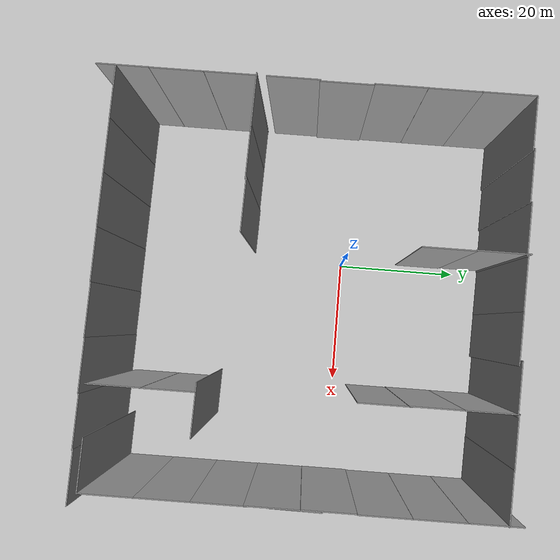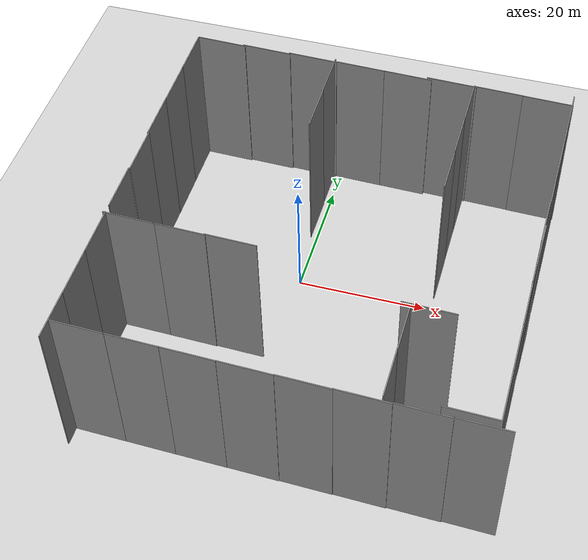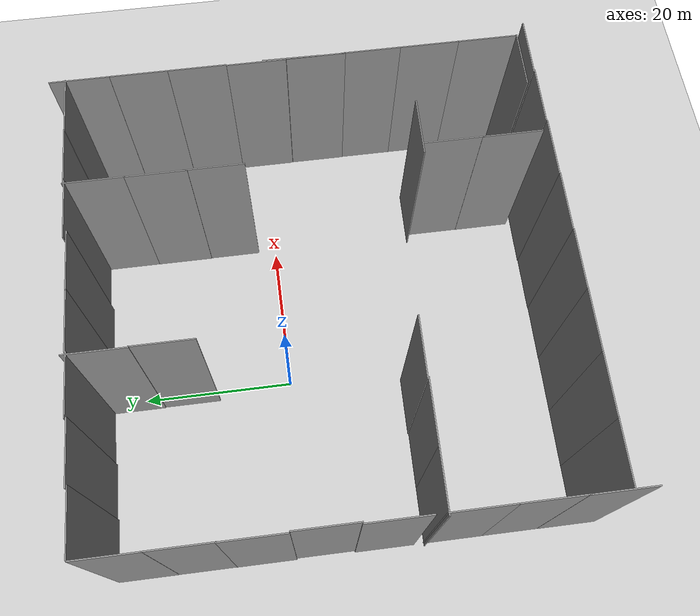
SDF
<sdf version="1.7">
 <world name="default">
  <light name="sun" type="directional">
   <pose>0 0 10 0 -0 0</pose>
   <diffuse>0.8 0.8 0.8 1</diffuse>
   <specular>0.2 0.2 0.2 1</specular>
   <attenuation>
    <range>1000</range>
    <constant>0.9</constant>
    <linear>0.01</linear>
    <quadratic>0.001</quadratic>
   </attenuation>
   <direction>-0.5 0.1 -0.9</direction>
   <spot><inner_angle>0</inner_angle><outer_angle>0</outer_angle><falloff>0</falloff></spot>
  </light>
  <model name="ground_plane">
   <static>1</static>
   <link name="link">
    <collision name="collision">
     <laser_retro>100</laser_retro>
     <geometry><plane><normal>0 0 1</normal><size>100 100</size></plane></geometry>
     <surface><friction><ode><mu>100</mu><mu2>50</mu2></ode></friction></surface>
    </collision>
    <visual name="visual">
     <laser_retro>100</laser_retro>
     <cast_shadows>0</cast_shadows>
     <geometry><plane><normal>0 0 1</normal><size>100 100</size></plane></geometry>
     <material>
      <script><uri>file://media/materials/scripts/gazebo.material</uri><name>Gazebo/Grey</name></script>
     </material>
    </visual>
   </link>
  </model>
  <gravity>0 0 -9.8</gravity>
  <magnetic_field>6e-06 2.3e-05 -4.2e-05</magnetic_field>
  <atmosphere type="adiabatic"/>
  <physics type="ode">
   <max_step_size>0.001</max_step_size>
   <real_time_factor>1</real_time_factor>
   <real_time_update_rate>1000</real_time_update_rate>
  </physics>
  <scene><ambient>0.4 0.4 0.4 1</ambient><background>0.7 0.7 0.7 1</background><shadows>1</shadows></scene>
  <audio><device>default</device></audio>
  <spherical_coordinates>
   <surface_model>EARTH_WGS84</surface_model>
   <latitude_deg>0</latitude_deg>
   <longitude_deg>0</longitude_deg>
   <elevation>0</elevation>
   <heading_deg>0</heading_deg>
  </spherical_coordinates>
  <model name="Untitled">
   <pose>21.4357 -31.2131 0 0 -0 0</pose>
   <link name="Wall_0">
    <collision name="Wall_0_Collision">
     <geometry><box><size>7.75 0.15 25</size></box></geometry>
     <pose>0 0 12.5 0 -0 0</pose>
    </collision>
    <visual name="Wall_0_Visual">
     <pose>0 0 12.5 0 -0 0</pose>
     <geometry><box><size>7.75 0.15 25</size></box></geometry>
     <material>
      <script><uri>file://media/materials/scripts/gazebo.material</uri><name>Gazebo/Grey</name></script>
      <ambient>1 1 1 1</ambient>
     </material>
     <meta><layer>0</layer></meta>
    </visual>
    <pose>-0.1875 0 0 0 -0 1.5708</pose>
   </link>
   <static>1</static>
  </model>
  <model name="Untitled_clone_0">
   <pose>21.1967 20.9701 0 0 -0 0</pose>
   <link name="Wall_0">
    <collision name="Wall_0_Collision">
     <geometry><box><size>7.75 0.15 25</size></box></geometry>
     <pose>0 0 12.5 0 -0 0</pose>
    </collision>
    <visual name="Wall_0_Visual">
     <pose>0 0 12.5 0 -0 0</pose>
     <geometry><box><size>7.75 0.15 25</size></box></geometry>
     <material>
      <script><uri>file://media/materials/scripts/gazebo.material</uri><name>Gazebo/Grey</name></script>
      <ambient>1 1 1 1</ambient>
     </material>
     <meta><layer>0</layer></meta>
    </visual>
    <pose>-0.1875 0 0 0 -0 1.5708</pose>
   </link>
   <static>1</static>
  </model>
  <model name="Untitled_clone_1">
   <pose>21.1815 13.3902 0 0 -0 0</pose>
   <link name="Wall_0">
    <collision name="Wall_0_Collision">
     <geometry><box><size>7.75 0.15 25</size></box></geometry>
     <pose>0 0 12.5 0 -0 0</pose>
    </collision>
    <visual name="Wall_0_Visual">
     <pose>0 0 12.5 0 -0 0</pose>
     <geometry><box><size>7.75 0.15 25</size></box></geometry>
     <material>
      <script><uri>file://media/materials/scripts/gazebo.material</uri><name>Gazebo/Grey</name></script>
      <ambient>1 1 1 1</ambient>
     </material>
     <meta><layer>0</layer></meta>
    </visual>
    <pose>-0.1875 0 0 0 -0 1.5708</pose>
   </link>
   <static>1</static>
  </model>
  <model name="Untitled_clone_3">
   <pose>-0.948586 21.356 0 0 -0 0</pose>
   <link name="Wall_0">
    <collision name="Wall_0_Collision">
     <geometry><box><size>7.75 0.15 25</size></box></geometry>
     <pose>0 0 12.5 0 -0 0</pose>
    </collision>
    <visual name="Wall_0_Visual">
     <pose>0 0 12.5 0 -0 0</pose>
     <geometry><box><size>7.75 0.15 25</size></box></geometry>
     <material>
      <script><uri>file://media/materials/scripts/gazebo.material</uri><name>Gazebo/Grey</name></script>
      <ambient>1 1 1 1</ambient>
     </material>
     <meta><layer>0</layer></meta>
    </visual>
    <pose>-0.1875 0 0 0 -0 1.5708</pose>
   </link>
   <static>1</static>
  </model>
  <model name="Untitled_clone_4">
   <pose>-0.878064 13.7598 0 0 -0 0</pose>
   <link name="Wall_0">
    <collision name="Wall_0_Collision">
     <geometry><box><size>7.75 0.15 25</size></box></geometry>
     <pose>0 0 12.5 0 -0 0</pose>
    </collision>
    <visual name="Wall_0_Visual">
     <pose>0 0 12.5 0 -0 0</pose>
     <geometry><box><size>7.75 0.15 25</size></box></geometry>
     <material>
      <script><uri>file://media/materials/scripts/gazebo.material</uri><name>Gazebo/Grey</name></script>
      <ambient>1 1 1 1</ambient>
     </material>
     <meta><layer>0</layer></meta>
    </visual>
    <pose>-0.1875 0 0 0 -0 1.5708</pose>
   </link>
   <static>1</static>
  </model>
  <model name="Untitled_clone_5">
   <pose>-23.3423 20.8144 0 0 -0 0</pose>
   <link name="Wall_0">
    <collision name="Wall_0_Collision">
     <geometry><box><size>7.75 0.15 25</size></box></geometry>
     <pose>0 0 12.5 0 -0 0</pose>
    </collision>
    <visual name="Wall_0_Visual">
     <pose>0 0 12.5 0 -0 0</pose>
     <geometry><box><size>7.75 0.15 25</size></box></geometry>
     <material>
      <script><uri>file://media/materials/scripts/gazebo.material</uri><name>Gazebo/Grey</name></script>
      <ambient>1 1 1 1</ambient>
     </material>
     <meta><layer>0</layer></meta>
    </visual>
    <pose>-0.1875 0 0 0 -0 1.5708</pose>
   </link>
   <static>1</static>
  </model>
  <model name="Untitled_clone_6">
   <pose>-23.3276 13.1917 0 0 -0 0</pose>
   <link name="Wall_0">
    <collision name="Wall_0_Collision">
     <geometry><box><size>7.75 0.15 25</size></box></geometry>
     <pose>0 0 12.5 0 -0 0</pose>
    </collision>
    <visual name="Wall_0_Visual">
     <pose>0 0 12.5 0 -0 0</pose>
     <geometry><box><size>7.75 0.15 25</size></box></geometry>
     <material>
      <script><uri>file://media/materials/scripts/gazebo.material</uri><name>Gazebo/Grey</name></script>
      <ambient>1 1 1 1</ambient>
     </material>
     <meta><layer>0</layer></meta>
    </visual>
    <pose>-0.1875 0 0 0 -0 1.5708</pose>
   </link>
   <static>1</static>
  </model>
  <model name="Untitled_clone_7">
   <pose>-23.3477 5.57838 0 0 -0 0</pose>
   <link name="Wall_0">
    <collision name="Wall_0_Collision">
     <geometry><box><size>7.75 0.15 25</size></box></geometry>
     <pose>0 0 12.5 0 -0 0</pose>
    </collision>
    <visual name="Wall_0_Visual">
     <pose>0 0 12.5 0 -0 0</pose>
     <geometry><box><size>7.75 0.15 25</size></box></geometry>
     <material>
      <script><uri>file://media/materials/scripts/gazebo.material</uri><name>Gazebo/Grey</name></script>
      <ambient>1 1 1 1</ambient>
     </material>
     <meta><layer>0</layer></meta>
    </visual>
    <pose>-0.1875 0 0 0 -0 1.5708</pose>
   </link>
   <static>1</static>
  </model>
  <model name="Untitled_clone_8">
   <pose>-23.1873 -2.12969 0 0 -0 0</pose>
   <link name="Wall_0">
    <collision name="Wall_0_Collision">
     <geometry><box><size>7.75 0.15 25</size></box></geometry>
     <pose>0 0 12.5 0 -0 0</pose>
    </collision>
    <visual name="Wall_0_Visual">
     <pose>0 0 12.5 0 -0 0</pose>
     <geometry><box><size>7.75 0.15 25</size></box></geometry>
     <material>
      <script><uri>file://media/materials/scripts/gazebo.material</uri><name>Gazebo/Grey</name></script>
      <ambient>1 1 1 1</ambient>
     </material>
     <meta><layer>0</layer></meta>
    </visual>
    <pose>-0.1875 0 0 0 -0 1.5708</pose>
   </link>
   <static>1</static>
  </model>
  <model name="Untitled_clone_9">
   <pose>-23.3729 -9.74814 0 0 -0 0</pose>
   <link name="Wall_0">
    <collision name="Wall_0_Collision">
     <geometry><box><size>7.75 0.15 25</size></box></geometry>
     <pose>0 0 12.5 0 -0 0</pose>
    </collision>
    <visual name="Wall_0_Visual">
     <pose>0 0 12.5 0 -0 0</pose>
     <geometry><box><size>7.75 0.15 25</size></box></geometry>
     <material>
      <script><uri>file://media/materials/scripts/gazebo.material</uri><name>Gazebo/Grey</name></script>
      <ambient>1 1 1 1</ambient>
     </material>
     <meta><layer>0</layer></meta>
    </visual>
    <pose>-0.1875 0 0 0 -0 1.5708</pose>
   </link>
   <static>1</static>
  </model>
  <model name="Untitled_clone_10">
   <pose>-23.3609 -18.7123 0 0 -0 0</pose>
   <link name="Wall_0">
    <collision name="Wall_0_Collision">
     <geometry><box><size>7.75 0.15 25</size></box></geometry>
     <pose>0 0 12.5 0 -0 0</pose>
    </collision>
    <visual name="Wall_0_Visual">
     <pose>0 0 12.5 0 -0 0</pose>
     <geometry><box><size>7.75 0.15 25</size></box></geometry>
     <material>
      <script><uri>file://media/materials/scripts/gazebo.material</uri><name>Gazebo/Grey</name></script>
      <ambient>1 1 1 1</ambient>
     </material>
     <meta><layer>0</layer></meta>
    </visual>
    <pose>-0.1875 0 0 0 -0 1.5708</pose>
   </link>
   <static>1</static>
  </model>
  <model name="Untitled_clone_11">
   <pose>-23.3539 -26.3003 0 0 -0 0</pose>
   <link name="Wall_0">
    <collision name="Wall_0_Collision">
     <geometry><box><size>7.75 0.15 25</size></box></geometry>
     <pose>0 0 12.5 0 -0 0</pose>
    </collision>
    <visual name="Wall_0_Visual">
     <pose>0 0 12.5 0 -0 0</pose>
     <geometry><box><size>7.75 0.15 25</size></box></geometry>
     <material>
      <script><uri>file://media/materials/scripts/gazebo.material</uri><name>Gazebo/Grey</name></script>
      <ambient>1 1 1 1</ambient>
     </material>
     <meta><layer>0</layer></meta>
    </visual>
    <pose>-0.1875 0 0 0 -0 1.5708</pose>
   </link>
   <static>1</static>
  </model>
  <model name="Untitled_clone_12">
   <pose>-23.3734 -33.8357 0 0 -0 0</pose>
   <link name="Wall_0">
    <collision name="Wall_0_Collision">
     <geometry><box><size>7.75 0.15 25</size></box></geometry>
     <pose>0 0 12.5 0 -0 0</pose>
    </collision>
    <visual name="Wall_0_Visual">
     <pose>0 0 12.5 0 -0 0</pose>
     <geometry><box><size>7.75 0.15 25</size></box></geometry>
     <material>
      <script><uri>file://media/materials/scripts/gazebo.material</uri><name>Gazebo/Grey</name></script>
      <ambient>1 1 1 1</ambient>
     </material>
     <meta><layer>0</layer></meta>
    </visual>
    <pose>-0.1875 0 0 0 -0 1.5708</pose>
   </link>
   <static>1</static>
  </model>
  <model name="Untitled_clone_2">
   <pose>21.2286 6.30748 0 0 -0 0</pose>
   <link name="Wall_0">
    <collision name="Wall_0_Collision">
     <geometry><box><size>7.75 0.15 25</size></box></geometry>
     <pose>0 0 12.5 0 -0 0</pose>
    </collision>
    <visual name="Wall_0_Visual">
     <pose>0 0 12.5 0 -0 0</pose>
     <geometry><box><size>7.75 0.15 25</size></box></geometry>
     <material>
      <script><uri>file://media/materials/scripts/gazebo.material</uri><name>Gazebo/Grey</name></script>
      <ambient>1 1 1 1</ambient>
     </material>
     <meta><layer>0</layer></meta>
    </visual>
    <pose>-0.1875 0 0 0 -0 1.5708</pose>
   </link>
   <static>1</static>
  </model>
  <model name="Untitled_clone">
   <pose>21.4559 -23.7124 0 0 -0 0</pose>
   <link name="Wall_0">
    <collision name="Wall_0_Collision">
     <geometry><box><size>7.75 0.15 25</size></box></geometry>
     <pose>0 0 12.5 0 -0 0</pose>
    </collision>
    <visual name="Wall_0_Visual">
     <pose>0 0 12.5 0 -0 0</pose>
     <geometry><box><size>7.75 0.15 25</size></box></geometry>
     <material>
      <script><uri>file://media/materials/scripts/gazebo.material</uri><name>Gazebo/Grey</name></script>
      <ambient>1 1 1 1</ambient>
     </material>
     <meta><layer>0</layer></meta>
    </visual>
    <pose>-0.1875 0 0 0 -0 1.5708</pose>
   </link>
   <static>1</static>
  </model>
  <model name="Untitled_clone_13">
   <pose>36.2984 -30.8888 0 0 -0 0</pose>
   <link name="Wall_0">
    <collision name="Wall_0_Collision">
     <geometry><box><size>7.75 0.15 25</size></box></geometry>
     <pose>0 0 12.5 0 -0 0</pose>
    </collision>
    <visual name="Wall_0_Visual">
     <pose>0 0 12.5 0 -0 0</pose>
     <geometry><box><size>7.75 0.15 25</size></box></geometry>
     <material>
      <script><uri>file://media/materials/scripts/gazebo.material</uri><name>Gazebo/Grey</name></script>
      <ambient>1 1 1 1</ambient>
     </material>
     <meta><layer>0</layer></meta>
    </visual>
    <pose>-0.1875 0 0 0 -0 1.5708</pose>
   </link>
   <static>1</static>
  </model>
  <model name="Untitled_clone_14">
   <pose>36.2973 -23.1881 0 0 -0 0</pose>
   <link name="Wall_0">
    <collision name="Wall_0_Collision">
     <geometry><box><size>7.75 0.15 25</size></box></geometry>
     <pose>0 0 12.5 0 -0 0</pose>
    </collision>
    <visual name="Wall_0_Visual">
     <pose>0 0 12.5 0 -0 0</pose>
     <geometry><box><size>7.75 0.15 25</size></box></geometry>
     <material>
      <script><uri>file://media/materials/scripts/gazebo.material</uri><name>Gazebo/Grey</name></script>
      <ambient>1 1 1 1</ambient>
     </material>
     <meta><layer>0</layer></meta>
    </visual>
    <pose>-0.1875 0 0 0 -0 1.5708</pose>
   </link>
   <static>1</static>
  </model>
  <model name="Untitled_clone_15">
   <pose>36.2965 -15.4612 0 0 -0 0</pose>
   <link name="Wall_0">
    <collision name="Wall_0_Collision">
     <geometry><box><size>7.75 0.15 25</size></box></geometry>
     <pose>0 0 12.5 0 -0 0</pose>
    </collision>
    <visual name="Wall_0_Visual">
     <pose>0 0 12.5 0 -0 0</pose>
     <geometry><box><size>7.75 0.15 25</size></box></geometry>
     <material>
      <script><uri>file://media/materials/scripts/gazebo.material</uri><name>Gazebo/Grey</name></script>
      <ambient>1 1 1 1</ambient>
     </material>
     <meta><layer>0</layer></meta>
    </visual>
    <pose>-0.1875 0 0 0 -0 1.5708</pose>
   </link>
   <static>1</static>
  </model>
  <model name="Untitled_clone_16">
   <pose>36.2608 -8.17144 0 0 -0 0</pose>
   <link name="Wall_0">
    <collision name="Wall_0_Collision">
     <geometry><box><size>7.75 0.15 25</size></box></geometry>
     <pose>0 0 12.5 0 -0 0</pose>
    </collision>
    <visual name="Wall_0_Visual">
     <pose>0 0 12.5 0 -0 0</pose>
     <geometry><box><size>7.75 0.15 25</size></box></geometry>
     <material>
      <script><uri>file://media/materials/scripts/gazebo.material</uri><name>Gazebo/Grey</name></script>
      <ambient>1 1 1 1</ambient>
     </material>
     <meta><layer>0</layer></meta>
    </visual>
    <pose>-0.1875 0 0 0 -0 1.5708</pose>
   </link>
   <static>1</static>
  </model>
  <model name="Untitled_clone_17">
   <pose>36.2206 -0.370441 0 0 -0 0</pose>
   <link name="Wall_0">
    <collision name="Wall_0_Collision">
     <geometry><box><size>7.75 0.15 25</size></box></geometry>
     <pose>0 0 12.5 0 -0 0</pose>
    </collision>
    <visual name="Wall_0_Visual">
     <pose>0 0 12.5 0 -0 0</pose>
     <geometry><box><size>7.75 0.15 25</size></box></geometry>
     <material>
      <script><uri>file://media/materials/scripts/gazebo.material</uri><name>Gazebo/Grey</name></script>
      <ambient>1 1 1 1</ambient>
     </material>
     <meta><layer>0</layer></meta>
    </visual>
    <pose>-0.1875 0 0 0 -0 1.5708</pose>
   </link>
   <static>1</static>
  </model>
  <model name="Untitled_clone_18">
   <pose>36.3114 7.37757 0 0 -0 0</pose>
   <link name="Wall_0">
    <collision name="Wall_0_Collision">
     <geometry><box><size>7.75 0.15 25</size></box></geometry>
     <pose>0 0 12.5 0 -0 0</pose>
    </collision>
    <visual name="Wall_0_Visual">
     <pose>0 0 12.5 0 -0 0</pose>
     <geometry><box><size>7.75 0.15 25</size></box></geometry>
     <material>
      <script><uri>file://media/materials/scripts/gazebo.material</uri><name>Gazebo/Grey</name></script>
      <ambient>1 1 1 1</ambient>
     </material>
     <meta><layer>0</layer></meta>
    </visual>
    <pose>-0.1875 0 0 0 -0 1.5708</pose>
   </link>
   <static>1</static>
  </model>
  <model name="Untitled_clone_19">
   <pose>36.3064 14.989 0 0 -0 0</pose>
   <link name="Wall_0">
    <collision name="Wall_0_Collision">
     <geometry><box><size>7.75 0.15 25</size></box></geometry>
     <pose>0 0 12.5 0 -0 0</pose>
    </collision>
    <visual name="Wall_0_Visual">
     <pose>0 0 12.5 0 -0 0</pose>
     <geometry><box><size>7.75 0.15 25</size></box></geometry>
     <material>
      <script><uri>file://media/materials/scripts/gazebo.material</uri><name>Gazebo/Grey</name></script>
      <ambient>1 1 1 1</ambient>
     </material>
     <meta><layer>0</layer></meta>
    </visual>
    <pose>-0.1875 0 0 0 -0 1.5708</pose>
   </link>
   <static>1</static>
  </model>
  <model name="Untitled_clone_20">
   <pose>36.2976 22.4776 0 0 -0 0</pose>
   <link name="Wall_0">
    <collision name="Wall_0_Collision">
     <geometry><box><size>7.75 0.15 25</size></box></geometry>
     <pose>0 0 12.5 0 -0 0</pose>
    </collision>
    <visual name="Wall_0_Visual">
     <pose>0 0 12.5 0 -0 0</pose>
     <geometry><box><size>7.75 0.15 25</size></box></geometry>
     <material>
      <script><uri>file://media/materials/scripts/gazebo.material</uri><name>Gazebo/Grey</name></script>
      <ambient>1 1 1 1</ambient>
     </material>
     <meta><layer>0</layer></meta>
    </visual>
    <pose>-0.1875 0 0 0 -0 1.5708</pose>
   </link>
   <static>1</static>
  </model>
  <model name="Untitled_clone_21">
   <pose>-19.6291 -35.1357 0 0 0 -1.59671</pose>
   <link name="Wall_0">
    <collision name="Wall_0_Collision">
     <geometry><box><size>7.75 0.15 25</size></box></geometry>
     <pose>0 0 12.5 0 -0 0</pose>
    </collision>
    <visual name="Wall_0_Visual">
     <pose>0 0 12.5 0 -0 0</pose>
     <geometry><box><size>7.75 0.15 25</size></box></geometry>
     <material>
      <script><uri>file://media/materials/scripts/gazebo.material</uri><name>Gazebo/Grey</name></script>
      <ambient>1 1 1 1</ambient>
     </material>
     <meta><layer>0</layer></meta>
    </visual>
    <pose>-0.1875 0 0 0 -0 1.5708</pose>
   </link>
   <static>1</static>
  </model>
  <model name="Untitled_clone_21_clone">
   <pose>-12.0467 -35.3161 0 0 0 -1.59671</pose>
   <link name="Wall_0">
    <collision name="Wall_0_Collision">
     <geometry><box><size>7.75 0.15 25</size></box></geometry>
     <pose>0 0 12.5 0 -0 0</pose>
    </collision>
    <visual name="Wall_0_Visual">
     <pose>0 0 12.5 0 -0 0</pose>
     <geometry><box><size>7.75 0.15 25</size></box></geometry>
     <material>
      <script><uri>file://media/materials/scripts/gazebo.material</uri><name>Gazebo/Grey</name></script>
      <ambient>1 1 1 1</ambient>
     </material>
     <meta><layer>0</layer></meta>
    </visual>
    <pose>-0.1875 0 0 0 -0 1.5708</pose>
   </link>
   <static>1</static>
  </model>
  <model name="Untitled_clone_21_clone_0">
   <pose>-4.33674 -35.5068 0 0 0 -1.59671</pose>
   <link name="Wall_0">
    <collision name="Wall_0_Collision">
     <geometry><box><size>7.75 0.15 25</size></box></geometry>
     <pose>0 0 12.5 0 -0 0</pose>
    </collision>
    <visual name="Wall_0_Visual">
     <pose>0 0 12.5 0 -0 0</pose>
     <geometry><box><size>7.75 0.15 25</size></box></geometry>
     <material>
      <script><uri>file://media/materials/scripts/gazebo.material</uri><name>Gazebo/Grey</name></script>
      <ambient>1 1 1 1</ambient>
     </material>
     <meta><layer>0</layer></meta>
    </visual>
    <pose>-0.1875 0 0 0 -0 1.5708</pose>
   </link>
   <static>1</static>
  </model>
  <model name="Untitled_clone_21_clone_1">
   <pose>3.38298 -35.6809 0 0 0 -1.59671</pose>
   <link name="Wall_0">
    <collision name="Wall_0_Collision">
     <geometry><box><size>7.75 0.15 25</size></box></geometry>
     <pose>0 0 12.5 0 -0 0</pose>
    </collision>
    <visual name="Wall_0_Visual">
     <pose>0 0 12.5 0 -0 0</pose>
     <geometry><box><size>7.75 0.15 25</size></box></geometry>
     <material>
      <script><uri>file://media/materials/scripts/gazebo.material</uri><name>Gazebo/Grey</name></script>
      <ambient>1 1 1 1</ambient>
     </material>
     <meta><layer>0</layer></meta>
    </visual>
    <pose>-0.1875 0 0 0 -0 1.5708</pose>
   </link>
   <static>1</static>
  </model>
  <model name="Untitled_clone_21_clone_2">
   <pose>11.11 -35.8113 0 0 0 -1.59671</pose>
   <link name="Wall_0">
    <collision name="Wall_0_Collision">
     <geometry><box><size>7.75 0.15 25</size></box></geometry>
     <pose>0 0 12.5 0 -0 0</pose>
    </collision>
    <visual name="Wall_0_Visual">
     <pose>0 0 12.5 0 -0 0</pose>
     <geometry><box><size>7.75 0.15 25</size></box></geometry>
     <material>
      <script><uri>file://media/materials/scripts/gazebo.material</uri><name>Gazebo/Grey</name></script>
      <ambient>1 1 1 1</ambient>
     </material>
     <meta><layer>0</layer></meta>
    </visual>
    <pose>-0.1875 0 0 0 -0 1.5708</pose>
   </link>
   <static>1</static>
  </model>
  <model name="Untitled_clone_21_clone_3">
   <pose>18.7771 -35.9465 0 0 0 -1.59671</pose>
   <link name="Wall_0">
    <collision name="Wall_0_Collision">
     <geometry><box><size>7.75 0.15 25</size></box></geometry>
     <pose>0 0 12.5 0 -0 0</pose>
    </collision>
    <visual name="Wall_0_Visual">
     <pose>0 0 12.5 0 -0 0</pose>
     <geometry><box><size>7.75 0.15 25</size></box></geometry>
     <material>
      <script><uri>file://media/materials/scripts/gazebo.material</uri><name>Gazebo/Grey</name></script>
      <ambient>1 1 1 1</ambient>
     </material>
     <meta><layer>0</layer></meta>
    </visual>
    <pose>-0.1875 0 0 0 -0 1.5708</pose>
   </link>
   <static>1</static>
  </model>
  <model name="Untitled_clone_21_clone_4">
   <pose>26.5143 -36.034 0 0 0 -1.59671</pose>
   <link name="Wall_0">
    <collision name="Wall_0_Collision">
     <geometry><box><size>7.75 0.15 25</size></box></geometry>
     <pose>0 0 12.5 0 -0 0</pose>
    </collision>
    <visual name="Wall_0_Visual">
     <pose>0 0 12.5 0 -0 0</pose>
     <geometry><box><size>7.75 0.15 25</size></box></geometry>
     <material>
      <script><uri>file://media/materials/scripts/gazebo.material</uri><name>Gazebo/Grey</name></script>
      <ambient>1 1 1 1</ambient>
     </material>
     <meta><layer>0</layer></meta>
    </visual>
    <pose>-0.1875 0 0 0 -0 1.5708</pose>
   </link>
   <static>1</static>
  </model>
  <model name="Untitled_clone_21_clone_5">
   <pose>34.0636 -36.1162 0 0 0 -1.59671</pose>
   <link name="Wall_0">
    <collision name="Wall_0_Collision">
     <geometry><box><size>7.75 0.15 25</size></box></geometry>
     <pose>0 0 12.5 0 -0 0</pose>
    </collision>
    <visual name="Wall_0_Visual">
     <pose>0 0 12.5 0 -0 0</pose>
     <geometry><box><size>7.75 0.15 25</size></box></geometry>
     <material>
      <script><uri>file://media/materials/scripts/gazebo.material</uri><name>Gazebo/Grey</name></script>
      <ambient>1 1 1 1</ambient>
     </material>
     <meta><layer>0</layer></meta>
    </visual>
    <pose>-0.1875 0 0 0 -0 1.5708</pose>
   </link>
   <static>1</static>
  </model>
  <model name="Untitled_clone_21_clone_6">
   <pose>-19.6104 24.4215 0 0 0 -1.59671</pose>
   <link name="Wall_0">
    <collision name="Wall_0_Collision">
     <geometry><box><size>7.75 0.15 25</size></box></geometry>
     <pose>0 0 12.5 0 -0 0</pose>
    </collision>
    <visual name="Wall_0_Visual">
     <pose>0 0 12.5 0 -0 0</pose>
     <geometry><box><size>7.75 0.15 25</size></box></geometry>
     <material>
      <script><uri>file://media/materials/scripts/gazebo.material</uri><name>Gazebo/Grey</name></script>
      <ambient>1 1 1 1</ambient>
     </material>
     <meta><layer>0</layer></meta>
    </visual>
    <pose>-0.1875 0 0 0 -0 1.5708</pose>
   </link>
   <static>1</static>
  </model>
  <model name="Untitled_clone_21_clone_7">
   <pose>-12.2183 24.4332 0 0 0 -1.59671</pose>
   <link name="Wall_0">
    <collision name="Wall_0_Collision">
     <geometry><box><size>7.75 0.15 25</size></box></geometry>
     <pose>0 0 12.5 0 -0 0</pose>
    </collision>
    <visual name="Wall_0_Visual">
     <pose>0 0 12.5 0 -0 0</pose>
     <geometry><box><size>7.75 0.15 25</size></box></geometry>
     <material>
      <script><uri>file://media/materials/scripts/gazebo.material</uri><name>Gazebo/Grey</name></script>
      <ambient>1 1 1 1</ambient>
     </material>
     <meta><layer>0</layer></meta>
    </visual>
    <pose>-0.1875 0 0 0 -0 1.5708</pose>
   </link>
   <static>1</static>
  </model>
  <model name="Untitled_clone_21_clone_8">
   <pose>-4.65625 24.4521 0 0 0 -1.59671</pose>
   <link name="Wall_0">
    <collision name="Wall_0_Collision">
     <geometry><box><size>7.75 0.15 25</size></box></geometry>
     <pose>0 0 12.5 0 -0 0</pose>
    </collision>
    <visual name="Wall_0_Visual">
     <pose>0 0 12.5 0 -0 0</pose>
     <geometry><box><size>7.75 0.15 25</size></box></geometry>
     <material>
      <script><uri>file://media/materials/scripts/gazebo.material</uri><name>Gazebo/Grey</name></script>
      <ambient>1 1 1 1</ambient>
     </material>
     <meta><layer>0</layer></meta>
    </visual>
    <pose>-0.1875 0 0 0 -0 1.5708</pose>
   </link>
   <static>1</static>
  </model>
  <model name="Untitled_clone_21_clone_9">
   <pose>3.00508 24.3785 0 0 0 -1.59671</pose>
   <link name="Wall_0">
    <collision name="Wall_0_Collision">
     <geometry><box><size>7.75 0.15 25</size></box></geometry>
     <pose>0 0 12.5 0 -0 0</pose>
    </collision>
    <visual name="Wall_0_Visual">
     <pose>0 0 12.5 0 -0 0</pose>
     <geometry><box><size>7.75 0.15 25</size></box></geometry>
     <material>
      <script><uri>file://media/materials/scripts/gazebo.material</uri><name>Gazebo/Grey</name></script>
      <ambient>1 1 1 1</ambient>
     </material>
     <meta><layer>0</layer></meta>
    </visual>
    <pose>-0.1875 0 0 0 -0 1.5708</pose>
   </link>
   <static>1</static>
  </model>
  <model name="Untitled_clone_21_clone_10">
   <pose>10.5406 24.2052 0 0 0 -1.59671</pose>
   <link name="Wall_0">
    <collision name="Wall_0_Collision">
     <geometry><box><size>7.75 0.15 25</size></box></geometry>
     <pose>0 0 12.5 0 -0 0</pose>
    </collision>
    <visual name="Wall_0_Visual">
     <pose>0 0 12.5 0 -0 0</pose>
     <geometry><box><size>7.75 0.15 25</size></box></geometry>
     <material>
      <script><uri>file://media/materials/scripts/gazebo.material</uri><name>Gazebo/Grey</name></script>
      <ambient>1 1 1 1</ambient>
     </material>
     <meta><layer>0</layer></meta>
    </visual>
    <pose>-0.1875 0 0 0 -0 1.5708</pose>
   </link>
   <static>1</static>
  </model>
  <model name="Untitled_clone_21_clone_11">
   <pose>17.5012 24.4352 0 0 0 -1.59671</pose>
   <link name="Wall_0">
    <collision name="Wall_0_Collision">
     <geometry><box><size>7.75 0.15 25</size></box></geometry>
     <pose>0 0 12.5 0 -0 0</pose>
    </collision>
    <visual name="Wall_0_Visual">
     <pose>0 0 12.5 0 -0 0</pose>
     <geometry><box><size>7.75 0.15 25</size></box></geometry>
     <material>
      <script><uri>file://media/materials/scripts/gazebo.material</uri><name>Gazebo/Grey</name></script>
      <ambient>1 1 1 1</ambient>
     </material>
     <meta><layer>0</layer></meta>
    </visual>
    <pose>-0.1875 0 0 0 -0 1.5708</pose>
   </link>
   <static>1</static>
  </model>
  <model name="Untitled_clone_21_clone_12">
   <pose>24.9064 24.3643 0 0 0 -1.59671</pose>
   <link name="Wall_0">
    <collision name="Wall_0_Collision">
     <geometry><box><size>7.75 0.15 25</size></box></geometry>
     <pose>0 0 12.5 0 -0 0</pose>
    </collision>
    <visual name="Wall_0_Visual">
     <pose>0 0 12.5 0 -0 0</pose>
     <geometry><box><size>7.75 0.15 25</size></box></geometry>
     <material>
      <script><uri>file://media/materials/scripts/gazebo.material</uri><name>Gazebo/Grey</name></script>
      <ambient>1 1 1 1</ambient>
     </material>
     <meta><layer>0</layer></meta>
    </visual>
    <pose>-0.1875 0 0 0 -0 1.5708</pose>
   </link>
   <static>1</static>
  </model>
  <model name="Untitled_clone_21_clone_13">
   <pose>32.4001 24.134 0 0 0 -1.59671</pose>
   <link name="Wall_0">
    <collision name="Wall_0_Collision">
     <geometry><box><size>7.75 0.15 25</size></box></geometry>
     <pose>0 0 12.5 0 -0 0</pose>
    </collision>
    <visual name="Wall_0_Visual">
     <pose>0 0 12.5 0 -0 0</pose>
     <geometry><box><size>7.75 0.15 25</size></box></geometry>
     <material>
      <script><uri>file://media/materials/scripts/gazebo.material</uri><name>Gazebo/Grey</name></script>
      <ambient>1 1 1 1</ambient>
     </material>
     <meta><layer>0</layer></meta>
    </visual>
    <pose>-0.1875 0 0 0 -0 1.5708</pose>
   </link>
   <static>1</static>
  </model>
  <model name="Untitled_clone_21_clone_14">
   <pose>-20.0967 -15.2605 0 0 0 -1.59671</pose>
   <link name="Wall_0">
    <collision name="Wall_0_Collision">
     <geometry><box><size>7.75 0.15 25</size></box></geometry>
     <pose>0 0 12.5 0 -0 0</pose>
    </collision>
    <visual name="Wall_0_Visual">
     <pose>0 0 12.5 0 -0 0</pose>
     <geometry><box><size>7.75 0.15 25</size></box></geometry>
     <material>
      <script><uri>file://media/materials/scripts/gazebo.material</uri><name>Gazebo/Grey</name></script>
      <ambient>1 1 1 1</ambient>
     </material>
     <meta><layer>0</layer></meta>
    </visual>
    <pose>-0.1875 0 0 0 -0 1.5708</pose>
   </link>
   <static>1</static>
  </model>
  <model name="Untitled_clone_21_clone_15">
   <pose>-12.61 -15.4539 0 0 0 -1.59671</pose>
   <link name="Wall_0">
    <collision name="Wall_0_Collision">
     <geometry><box><size>7.75 0.15 25</size></box></geometry>
     <pose>0 0 12.5 0 -0 0</pose>
    </collision>
    <visual name="Wall_0_Visual">
     <pose>0 0 12.5 0 -0 0</pose>
     <geometry><box><size>7.75 0.15 25</size></box></geometry>
     <material>
      <script><uri>file://media/materials/scripts/gazebo.material</uri><name>Gazebo/Grey</name></script>
      <ambient>1 1 1 1</ambient>
     </material>
     <meta><layer>0</layer></meta>
    </visual>
    <pose>-0.1875 0 0 0 -0 1.5708</pose>
   </link>
   <static>1</static>
  </model>
  <model name="Untitled_clone_21_clone_16">
   <pose>-5.13996 -15.5342 0 0 0 -1.59671</pose>
   <link name="Wall_0">
    <collision name="Wall_0_Collision">
     <geometry><box><size>7.75 0.15 25</size></box></geometry>
     <pose>0 0 12.5 0 -0 0</pose>
    </collision>
    <visual name="Wall_0_Visual">
     <pose>0 0 12.5 0 -0 0</pose>
     <geometry><box><size>7.75 0.15 25</size></box></geometry>
     <material>
      <script><uri>file://media/materials/scripts/gazebo.material</uri><name>Gazebo/Grey</name></script>
      <ambient>1 1 1 1</ambient>
     </material>
     <meta><layer>0</layer></meta>
    </visual>
    <pose>-0.1875 0 0 0 -0 1.5708</pose>
   </link>
   <static>1</static>
  </model>
  <model name="Untitled_clone_21_clone_17">
   <pose>23.7686 -20.062 0 0 0 -1.59671</pose>
   <link name="Wall_0">
    <collision name="Wall_0_Collision">
     <geometry><box><size>7.75 0.15 25</size></box></geometry>
     <pose>0 0 12.5 0 -0 0</pose>
    </collision>
    <visual name="Wall_0_Visual">
     <pose>0 0 12.5 0 -0 0</pose>
     <geometry><box><size>7.75 0.15 25</size></box></geometry>
     <material>
      <script><uri>file://media/materials/scripts/gazebo.material</uri><name>Gazebo/Grey</name></script>
      <ambient>1 1 1 1</ambient>
     </material>
     <meta><layer>0</layer></meta>
    </visual>
    <pose>-0.1875 0 0 0 -0 1.5708</pose>
   </link>
   <static>1</static>
  </model>
  <model name="Untitled_clone_21_clone_18">
   <pose>35.9656 -5.04812 0 0 -0 3.12875</pose>
   <link name="Wall_0">
    <collision name="Wall_0_Collision">
     <geometry><box><size>7.75 0.15 25</size></box></geometry>
     <pose>0 0 12.5 0 -0 0</pose>
    </collision>
    <visual name="Wall_0_Visual">
     <pose>0 0 12.5 0 -0 0</pose>
     <geometry><box><size>7.75 0.15 25</size></box></geometry>
     <material>
      <script><uri>file://media/materials/scripts/gazebo.material</uri><name>Gazebo/Grey</name></script>
      <ambient>1 1 1 1</ambient>
     </material>
     <meta><layer>0</layer></meta>
    </visual>
    <pose>-0.1875 0 0 0 -0 1.5708</pose>
   </link>
   <static>1</static>
  </model>
  <model name="Untitled_clone_21_clone_19">
   <pose>32.3767 -34.9048 0 0 0 -1.59671</pose>
   <link name="Wall_0">
    <collision name="Wall_0_Collision">
     <geometry><box><size>7.75 0.15 25</size></box></geometry>
     <pose>0 0 12.5 0 -0 0</pose>
    </collision>
    <visual name="Wall_0_Visual">
     <pose>0 0 12.5 0 -0 0</pose>
     <geometry><box><size>7.75 0.15 25</size></box></geometry>
     <material>
      <script><uri>file://media/materials/scripts/gazebo.material</uri><name>Gazebo/Grey</name></script>
      <ambient>1 1 1 1</ambient>
     </material>
     <meta><layer>0</layer></meta>
    </visual>
    <pose>-0.1875 0 0 0 -0 1.5708</pose>
   </link>
   <static>1</static>
  </model>
 </world>
</sdf>
